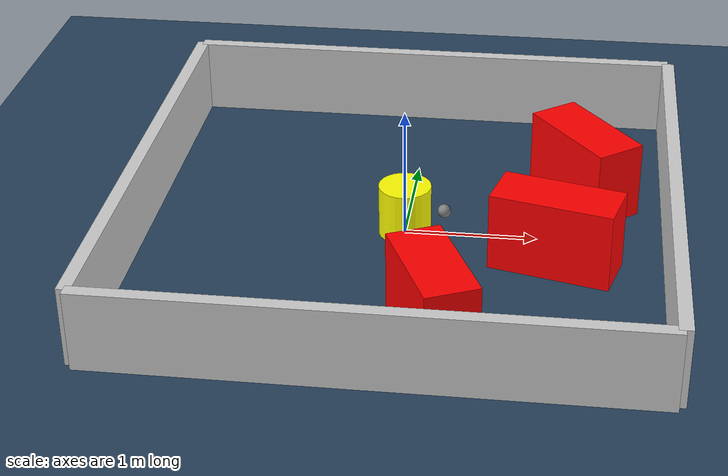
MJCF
<?xml version="1.0" ?>
<mujoco model="generated_environment">
  <option timestep="0.01" integrator="RK4" cone="elliptic"/>
  <default>
    <geom density="1"/>
  </default>
  <asset>
    <texture builtin="gradient" height="3072" rgb1="0.3 0.5 0.7" rgb2="0 0 0" type="skybox" width="512"/>
    <texture builtin="checker" height="300" mark="edge" markrgb="0.8 0.8 0.8" name="groundplane" rgb1="0.2 0.3 0.4" rgb2="0.1 0.2 0.3" type="2d" width="300"/>
    <material name="groundplane" reflectance="0.2" texrepeat="5 5" texture="groundplane" texuniform="true"/>
    <material name="robot" rgba="0.0 1.0 0.0 1"/>
  </asset>
  <worldbody>
    <light dir="0 0 -1" directional="true" pos="0 0 1.5"/>
    <geom condim="4" friction="1.0 0.005 0.001" material="groundplane" name="floor" size="0 0 0.05" type="plane"/>
    <body name="walls">
      <geom name="wall_1" condim="4" pos="-2.0 0.0 0.3" rgba="0.800000011920929 0.800000011920929 0.800000011920929 1.0" size="0.05 2.0 0.3" type="box"/>
      <geom name="wall_2" condim="4" pos="2.0 0.0 0.3" rgba="0.800000011920929 0.800000011920929 0.800000011920929 1.0" size="0.05 2.0 0.3" type="box"/>
      <geom name="wall_3" condim="4" pos="0.0 -2.0 0.3" rgba="0.800000011920929 0.800000011920929 0.800000011920929 1.0" size="2.0 0.05 0.3" type="box"/>
      <geom name="wall_4" condim="4" pos="0.0 2.0 0.3" rgba="0.800000011920929 0.800000011920929 0.800000011920929 1.0" size="2.0 0.05 0.3" type="box"/>
    </body>
    <body name="robot">
      <joint name="joint_x" type="slide" pos="0 0 0" axis="1 0 0"/>
      <joint name="joint_y" type="slide" pos="0 0 0" axis="0 1 0"/>
      <geom name="robot" type="sphere" pos="0.3 0.0 0.2" size="0.05" mass="5." friction="1.0 0.005 0.0001" condim="4" rgba="0.5 0.5 0.5 1.0"/>
      <site name="sensor_ball"/>
    </body>
    <body name="obstacle_movable_1">
      <geom name="obstacle_movable_1" condim="4" pos="0.0 0.0 0.2" euler="0 0 0.0" friction="1.0 0.005 0.001" rgba="1.0 1.0 0.0 1.0" size="0.2 0.2 0.0" type="cylinder" mass="0.1"/>
      <joint type="free"/>
    </body>
    <body name="obstacle_2_static">
      <geom name="obstacle_2_static" condim="4" pos="1.3390259049400113 0.704375461782152 0.3" euler="0 0 127.58198422855257" friction="1.0 0.005 0.001" rgba="1 0 0 1" size="0.44316214212271643 0.2 0.3" type="box"/>
    </body>
    <body name="obstacle_3_static">
      <geom name="obstacle_3_static" condim="4" pos="1.1519452616496682 -0.363649379403161 0.3" euler="0 0 345.6587303439952" friction="1.0 0.005 0.001" rgba="1 0 0 1" size="0.4587280914078494 0.2 0.3" type="box"/>
    </body>
    <body name="obstacle_4_static">
      <geom name="obstacle_4_static" condim="4" pos="0.3443710150258972 -1.3605908039409171 0.3" euler="0 0 294.1788346736661" friction="1.0 0.005 0.001" rgba="1 0 0 1" size="0.4272240483502808 0.2 0.3" type="box"/>
    </body>
  </worldbody>
  <actuator>
    <motor name="actuator_x" joint="joint_x" gear="1" ctrlrange="-1 1"/>
    <motor name="actuator_y" joint="joint_y" gear="1" ctrlrange="-1 1"/>
  </actuator>
</mujoco>
